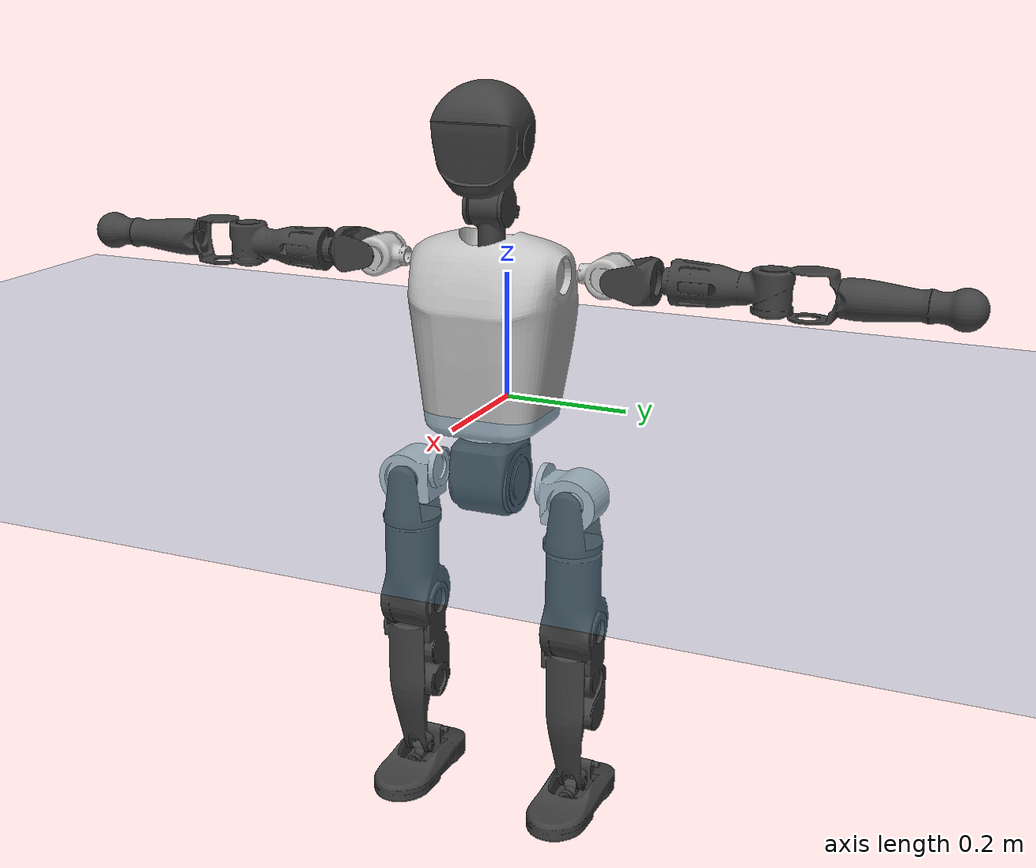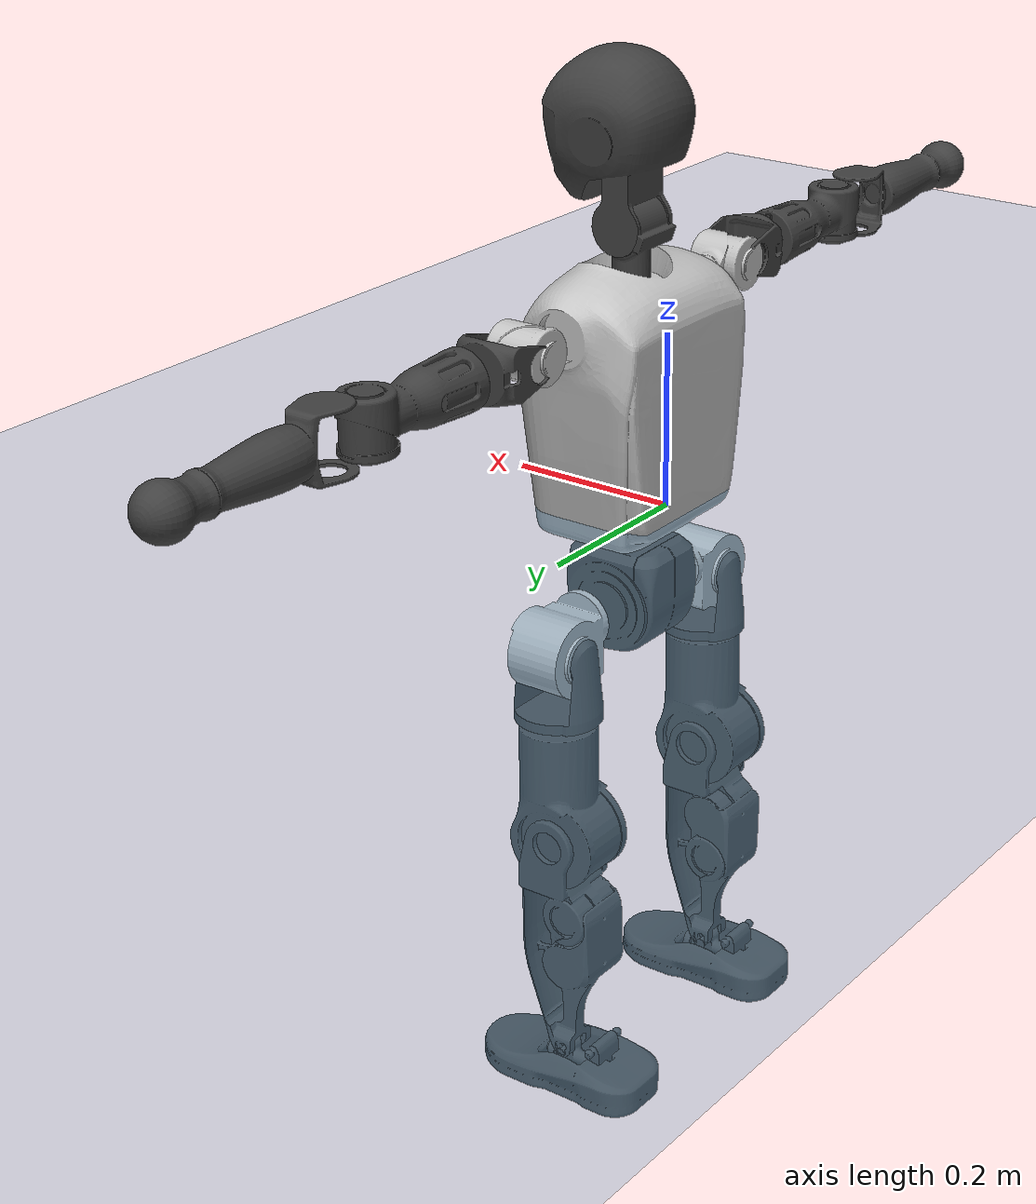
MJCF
<mujoco model="T1">
  <compiler angle="radian" assetdir="assets" balanceinertia="true" inertiafromgeom="false"/>

  <option timestep="0.005" density="1.2" viscosity="2e-05"/>

  <size nkey="1"/>

  <visual>
    <quality shadowsize="8192"/>
    <map shadowclip="0.5"/>
  </visual>

  <default>
    <default class="/">
      <joint armature="0.01" damping="0.01" frictionloss="0.1"/>
      <geom contype="0" conaffinity="0" group="1" solref="-1000 -80"/>
      <site size="0.01 0.005 0.005" group="5"/>
      <general forcelimited="true" biastype="affine" gainprm="25" biasprm="0 -25 -0.6"/>
      <default class="t1">
        <geom rgba="0.25 0.25 0.25 1"/>
        <default class="visual">
          <geom type="mesh" group="2"/>
        </default>
        <default class="collision">
          <geom group="3"/>
        </default>
        <default class="foot">
          <geom size="0.1115 0.05 0.015" type="box" condim="6" group="4" priority="1" solimp="0.015 1 0.015"/>
        </default>
        <default class="reward_collision_sphere">
          <geom group="5" rgba="1 0 0 1"/>
        </default>
      </default>
    </default>
  </default>

  <asset>
    <texture type="skybox" colorspace="auto" name="//unnamed_texture_0" builtin="gradient" rgb1="0.95 0.95 0.95" rgb2="0.95 0.95 0.95" width="100" height="600"/>
    <texture type="2d" colorspace="auto" name="texplane" builtin="checker" rgb1="0.345 0.575 0.748" rgb2="0.345 0.575 0.748" markrgb="1 1 1" width="512" height="512"/>
    <material name="MatPlane" class="/" texture="texplane" texuniform="true" texrepeat="2 2" specular="0.9"/>
    <mesh name="Trunk" class="/" file="Trunk.stl"/>
    <mesh name="H1" class="/" file="H1.stl"/>
    <mesh name="H2" class="/" file="H2.stl"/>
    <mesh name="AL1" class="/" file="AL1.stl"/>
    <mesh name="AL2" class="/" file="AL2.stl"/>
    <mesh name="AL3" class="/" file="AL3.stl"/>
    <mesh name="left_hand_link" class="/" file="left_hand_link.stl"/>
    <mesh name="AR1" class="/" file="AR1.stl"/>
    <mesh name="AR2" class="/" file="AR2.stl"/>
    <mesh name="AR3" class="/" file="AR3.stl"/>
    <mesh name="right_hand_link" class="/" file="right_hand_link.stl"/>
    <mesh name="Waist" class="/" file="Waist.stl"/>
    <mesh name="Hip_Pitch_Left" class="/" file="Hip_Pitch_Left.stl"/>
    <mesh name="Hip_Roll_Left" class="/" file="Hip_Roll_Left.stl"/>
    <mesh name="Hip_Yaw_Left" class="/" file="Hip_Yaw_Left.stl"/>
    <mesh name="Shank_Left" class="/" file="Shank_Left.stl"/>
    <mesh name="Ankle_Cross_Left" class="/" file="Ankle_Cross_Left.stl"/>
    <mesh name="left_foot_link" class="/" file="left_foot_link.stl"/>
    <mesh name="Hip_Pitch_Right" class="/" file="Hip_Pitch_Right.stl"/>
    <mesh name="Hip_Roll_Right" class="/" file="Hip_Roll_Right.stl"/>
    <mesh name="Hip_Yaw_Right" class="/" file="Hip_Yaw_Right.stl"/>
    <mesh name="Shank_Right" class="/" file="Shank_Right.stl"/>
    <mesh name="Ankle_Cross_Right" class="/" file="Ankle_Cross_Right.stl"/>
    <mesh name="right_foot_link" class="/" file="right_foot_link.stl"/>
  </asset>

  <worldbody>
    <geom name="floor" class="/" size="100 100 0.125" type="plane" group="0" material="MatPlane"/>
    <light name="toplight_shadow" class="/" pos="0 0 5" dir="0.0990148 0.0990148 -0.990148" type="directional" ambient="0.04 0.04 0.04" diffuse="0.55 0.55 0.55" specular="0.12 0.12 0.12"/>
    <light name="toplight_fill" class="/" pos="0 0 5" dir="0.0990148 0.0990148 -0.990148" type="directional" castshadow="false" ambient="0.04 0.04 0.04" diffuse="0.3 0.3 0.3" specular="0.08 0.08 0.08"/>
    <body name="trunk" childclass="t1" pos="-0.000200182 -0.00260261 -0.00243999" quat="1 3.54435e-05 0.000134859 0.000432427">
      <inertial pos="0.0500306 -0.000878753 0.109027" quat="0.999798 0.00608857 -0.0190333 0.00216268" mass="14.325" diaginertia="0.0446811 0.338913 0.0613493"/>
      <joint name="//unnamed_joint_0" type="free" armature="0" damping="0" frictionloss="0"/>
      <geom name="//unnamed_geom_1" class="visual" rgba="0.76 0.76 0.76 1" mesh="Trunk"/>
      <geom name="//unnamed_geom_2" class="collision" size="0.0815379 0.108717 0.163076" pos="0.0523566 0 0.12385" type="box"/>
      <geom name="//unnamed_geom_3" class="reward_collision_sphere" size="0.125025" pos="0.0523566 0 0.103208"/>
      <geom name="//unnamed_geom_4" class="reward_collision_sphere" size="0.0163076" pos="0.0523566 0.11533 0"/>
      <geom name="//unnamed_geom_5" class="reward_collision_sphere" size="0.0163076" pos="0.0523566 -0.11533 0"/>
      <geom name="//unnamed_geom_6" class="reward_collision_sphere" size="0.0163076" pos="0.0523566 0.14518 0.185775"/>
      <geom name="//unnamed_geom_7" class="reward_collision_sphere" size="0.0163076" pos="0.0523566 -0.14518 0.185775"/>
      <site name="imu" pos="-0.0134275 -0.0139785 0.00950066" size="0.0108717"/>
      <camera name="track" pos="0 -2.71365 0" quat="0.707107 0.707107 0 0" mode="trackcom"/>
      <camera name="ego_camera" pos="0.106458 0 0.433474" quat="-0.5 -0.5 0.5 0.5"/>
      <body name="H1" pos="0.051117 -0.001143 0.251387" quat="1 1.58098e-06 -6.21554e-05 -8.68891e-05">
        <inertial pos="-0.00055196 -0.00290481 0.0583112" quat="0.761635 -0.0132398 0.00420931 0.647858" mass="0.563578" diaginertia="0.000123417 0.00101185 0.000173591"/>
        <joint name="AAHead_yaw" pos="0 0 0" axis="-0.0100876 0.00802229 0.999917" range="-1.56802 1.5622" armature="0.0114007" damping="0.02147" frictionloss="0.116019"/>
        <geom name="//unnamed_geom_8" class="visual" mesh="H1"/>
        <body name="H2" pos="0.000750716 -0.00272596 0.0622899" quat="1 0.000362696 -0.000186732 -7.95803e-05">
          <inertial pos="0.00349473 0.00136909 0.0993674" quat="0.988379 0.106366 -0.0753495 -0.0781999" mass="0.805515" diaginertia="0.0010296 0.00876342 0.00204223"/>
          <joint name="Head_pitch" pos="0 0 0" axis="-0.000829722 -0.999976 0.00681371" range="-1.20219 0.341101" armature="0.0108333" damping="0.00948892" frictionloss="0.0954945"/>
          <geom name="//unnamed_geom_9" class="visual" mesh="H2"/>
          <geom name="//unnamed_geom_10" class="collision" size="0.0869737" pos="0.0087261 0 0.113529"/>
          <geom name="//unnamed_geom_11" class="reward_collision_sphere" size="0.0978455" pos="0.0174522 0 0.103208"/>
        </body>
      </body>
      <body name="AL1" pos="0.0485303 0.143862 0.223526" quat="1 -9.4617e-05 0.000707294 -1.71847e-05">
        <inertial pos="-0.000606581 0.0580728 -0.00294725" quat="0.504188 0.496019 -0.504372 0.495346" mass="0.692162" diaginertia="0.000716373 0.00599279 0.000341097"/>
        <joint name="Left_Shoulder_Pitch" pos="0 0 0" axis="-0.00030152 0.999997 -0.00226418" range="-3.27401 1.24424" armature="0.0108536" damping="0" frictionloss="0.109105"/>
        <geom name="//unnamed_geom_12" class="visual" rgba="0.76 0.76 0.76 1" mesh="AL1"/>
        <body name="AL2" pos="0.00120091 0.0651824 -0.002407" quat="0.999999 -0.000673589 0.000779577 0.000412849">
          <inertial pos="0.00370133 0.0508015 0.00260663" quat="0.485314 0.509453 -0.488898 0.515662" mass="0.210918" diaginertia="0.000198796 0.0015729 0.000206153"/>
          <joint name="Left_Shoulder_Roll" pos="0 0 0" axis="-0.999994 0.00332215 0.000247003" range="-1.57782 1.73383" armature="0.011983" damping="0.00765266" frictionloss="0.101483"/>
          <geom name="//unnamed_geom_13" class="visual" mesh="AL2"/>
          <body name="AL3" pos="0.000157405 0.0810487 0.00312595" quat="1 -1.54295e-05 -0.000344674 0.00040764">
            <inertial pos="-5.20289e-05 0.114939 -0.00276566" quat="0.710529 0.703592 0.00303626 0.00987429" mass="1.36512" diaginertia="0.00645168 0.0606501 0.000759077"/>
            <joint name="Left_Elbow_Pitch" pos="0 0 0" axis="-0.00390697 -0.99991 -0.0128157" stiffness="0.00874523" range="-2.25995 2.27293" armature="0.010435" damping="0.0218414" frictionloss="0.113401"/>
            <geom name="//unnamed_geom_14" class="visual" mesh="AL3"/>
            <geom name="//unnamed_geom_15" class="collision" size="0.0326152 0.0815379" pos="0 0.0678412 0" quat="0.707105 0.707108 0 0" type="cylinder"/>
            <geom name="//unnamed_geom_16" class="reward_collision_sphere" size="0.0391382"/>
            <body name="left_hand_link" pos="0.00294975 0.200009 0.000487111" quat="1 0.000314439 0.000118351 5.66284e-05">
              <inertial pos="-0.000735142 0.148635 -0.000142191" quat="0.707771 0.706364 -0.00244533 0.010268" mass="0.424782" diaginertia="0.00406021 0.0378853 0.000251051"/>
              <joint name="Left_Elbow_Yaw" pos="0 0 0" axis="0.000359659 0.00855504 0.999963" range="-2.44759 0.0176342" armature="0.0106468" damping="0.0152219" frictionloss="0.11752"/>
              <geom name="//unnamed_geom_17" class="visual" mesh="left_hand_link"/>
              <geom name="//unnamed_geom_18" class="collision" size="0.0326152 0.0951275" pos="0 0.176387 0" quat="0.707105 0.707108 0 0" type="cylinder"/>
              <geom name="//unnamed_geom_19" class="reward_collision_sphere" size="0.0543586"/>
              <geom name="//unnamed_geom_20" class="reward_collision_sphere" size="0.038051" pos="0 0.149251 0"/>
              <geom name="//unnamed_geom_21" class="reward_collision_sphere" size="0.038051" pos="0 0.291717 0"/>
            </body>
          </body>
        </body>
      </body>
      <body name="AR1" pos="0.0530869 -0.14383 0.225959" quat="0.999999 0.000518422 0.000479797 -0.000990414">
        <inertial pos="-0.00337525 -0.060976 -0.000185527" quat="0.50369 0.496247 -0.504188 0.495812" mass="0.713776" diaginertia="0.000717408 0.00636316 0.000364188"/>
        <joint name="Right_Shoulder_Pitch" pos="0 0 0" axis="0.00741723 -0.99996 -0.0049963" stiffness="0.00110826" range="-1.23165 3.32439" armature="0.0109026" damping="0.00520467" frictionloss="0.11038"/>
        <geom name="//unnamed_geom_22" class="visual" rgba="0.76 0.76 0.76 1" mesh="AR1"/>
        <body name="AR2" pos="0.000719442 -0.0625369 0.00273969" quat="1 -0.000116701 -0.000306399 4.73234e-05">
          <inertial pos="0.000552098 -0.0504775 0.00140742" quat="0.511765 0.487554 -0.511679 0.488439" mass="0.210772" diaginertia="0.000216245 0.00164541 0.000220051"/>
          <joint name="Right_Shoulder_Roll" pos="0 0 0" axis="-1 8.26509e-05 -0.000343488" range="-1.7326 1.58457" armature="0.0110202" damping="0.0121319" frictionloss="0.119154"/>
          <geom name="//unnamed_geom_23" class="visual" mesh="AR2"/>
          <body name="AR3" pos="0.00296942 -0.0795825 -0.0029042" quat="0.999999 0.00115482 -0.000596064 0.000495299">
            <inertial pos="0.00204831 -0.115504 -0.00155301" quat="0.715841 0.69825 0.00327674 -0.00283516" mass="1.35641" diaginertia="0.00672501 0.0612619 0.000727786"/>
            <joint name="Right_Elbow_Pitch" pos="0 0 0" axis="0.0098123 0.99992 -0.00795748" range="-2.27695 2.31329" armature="0.0105722" damping="0.0127223" frictionloss="0.114948"/>
            <geom name="//unnamed_geom_24" class="visual" mesh="AR3"/>
            <geom name="//unnamed_geom_25" class="collision" size="0.0326152 0.0815379" pos="0 -0.0678412 0" quat="0.707105 0.707108 0 0" type="cylinder"/>
            <geom name="//unnamed_geom_26" class="reward_collision_sphere" size="0.0391382"/>
            <body name="right_hand_link" pos="-0.000896101 -0.198226 -0.000854152" quat="0.999999 0.000907868 0.000804825 0.000205481">
              <inertial pos="-0.00061385 -0.14644 0.00324407" quat="0.707283 0.706893 0.00703889 0.0018222" mass="0.423229" diaginertia="0.0043397 0.0393699 0.000251193"/>
              <joint name="Right_Elbow_Yaw" pos="0 0 0" axis="0.000192056 -0.00310574 0.999995" range="0.0449683 2.4554" armature="0.0111945" damping="0.00611784" frictionloss="0.108691"/>
              <geom name="//unnamed_geom_27" class="visual" mesh="right_hand_link"/>
              <geom name="//unnamed_geom_28" class="collision" size="0.0326152 0.0951275" pos="0 -0.176387 0" quat="0.707105 0.707108 0 0" type="cylinder"/>
              <geom name="//unnamed_geom_29" class="reward_collision_sphere" size="0.0543586"/>
              <geom name="//unnamed_geom_30" class="reward_collision_sphere" size="0.038051" pos="0 -0.149251 0"/>
              <geom name="//unnamed_geom_31" class="reward_collision_sphere" size="0.038051" pos="0 -0.291717 0"/>
            </body>
          </body>
        </body>
      </body>
      <body name="Waist" pos="0.0514235 -0.002635 -0.117781" quat="0.999999 0.00120065 0.000400278 -0.000173657">
        <inertial pos="0.00347019 0.00113273 0.0087063" quat="0.983688 0.00076933 -0.179858 0.0029797" mass="3.13099" diaginertia="0.0026528 0.0238406 0.00554151"/>
        <joint name="Waist" pos="0 0 0" axis="0.0132161 -0.00113807 0.999912" range="-1.62412 1.56615" armature="0.0119649" damping="0.0234598" frictionloss="0.109555"/>
        <geom name="//unnamed_geom_32" class="visual" mesh="Waist"/>
        <body name="Hip_Pitch_Left" pos="0.00100749 0.145887 0.000424058" quat="1 -0.000736736 -0.00010388 -0.000192818">
          <inertial pos="0.0011431 -0.00844781 -0.0165623" quat="0.97743 0.210144 0.0209303 0.00557229" mass="1.30551" diaginertia="0.000915136 0.00687585 0.00146412"/>
          <joint name="Left_Hip_Pitch" pos="0 0 0" axis="0.00105062 0.999982 0.00595312" stiffness="0.00992243" range="-1.80423 1.57396" armature="0.0107682" damping="0.0242271" frictionloss="0.122645"/>
          <geom name="//unnamed_geom_33" class="visual" rgba="0.76 0.76 0.76 1" mesh="Hip_Pitch_Left"/>
          <body name="Hip_Roll_Left" pos="-0.00022282 -0.0031388 -0.0222342" quat="1 -0.000338088 0.000376561 -0.000208398">
            <inertial pos="-0.00187517 -0.000632731 -0.0525443" quat="0.706712 -0.00729982 -0.00755709 0.707424" mass="0.512299" diaginertia="0.000893887 0.00744891 0.000625227"/>
            <joint name="Left_Hip_Roll" pos="0 0 0" axis="-0.99999 -0.0014353 -0.00420428" stiffness="0.00210352" range="-1.56671 0.228312" armature="0.0110134" damping="0" frictionloss="0.0940601"/>
            <geom name="//unnamed_geom_34" class="visual" mesh="Hip_Roll_Left"/>
            <geom name="//unnamed_geom_35" class="reward_collision_sphere" size="0.0597944"/>
            <body name="Hip_Yaw_Left" pos="-0.00252407 0.00094621 -0.0863171" quat="1 -0.00027214 0.000195621 7.28267e-05">
              <inertial pos="-0.00722318 0.00220684 -0.0933493" quat="0.696762 -0.0338295 -0.0312778 0.715821" mass="2.74121" diaginertia="0.0132699 0.117838 0.00309676"/>
              <joint name="Left_Hip_Yaw" pos="0 0 0" axis="0.000540438 -0.000627195 -1" range="-1.06109 1.01715" armature="0.0105522" damping="0" frictionloss="0.107986"/>
              <geom name="//unnamed_geom_36" class="visual" mesh="Hip_Yaw_Left"/>
              <geom name="//unnamed_geom_37" class="collision" size="0.0543586 0.0869737" type="cylinder"/>
              <body name="Shank_Left" pos="-0.0130598 -0.000195812 -0.135062" quat="1 -4.24913e-06 -5.27789e-05 -3.78098e-05">
                <inertial pos="-0.00656821 0.00147667 -0.12767" quat="0.997603 0.0025496 -0.023283 0.065107" mass="2.28642" diaginertia="0.017875 0.160522 0.00225358"/>
                <joint name="Left_Knee_Pitch" pos="0 0 0" axis="-0.00266063 0.999956 -0.009014" stiffness="0.00848436" range="0.0540513 2.28296" armature="0.0106446" damping="0.0149088" frictionloss="0.100142"/>
                <geom name="//unnamed_geom_38" class="visual" mesh="Shank_Left"/>
                <geom name="//unnamed_geom_39" class="collision" size="0.0543586 0.0815379" pos="0 0 -0.12385" type="cylinder"/>
                <geom name="//unnamed_geom_40" class="reward_collision_sphere" size="0.0706662"/>
                <body name="Ankle_Cross_Left" pos="0.00187364 6.22418e-05 -0.288533" quat="1 1.60522e-05 -4.40526e-05 -7.63285e-05">
                  <inertial pos="-0.0058457 0.00205397 -0.00553768" quat="0.444193 0.553582 0.543721 0.447892" mass="0.0958376" diaginertia="1.49093e-05 0.000114527 1.32653e-05"/>
                  <joint name="Left_Ankle_Pitch" pos="0 0 0" axis="-0.000564797 1 2.07753e-05" range="-0.865621 0.369287" armature="0.00951086" damping="0" frictionloss="0.120904"/>
                  <geom name="//unnamed_geom_41" class="visual" mesh="Ankle_Cross_Left"/>
                  <body name="left_foot_link" pos="-0.00396159 -0.00209473 -0.013061" quat="0.999999 -0.00100307 -0.000442549 -0.000766034">
                    <inertial pos="-0.00206776 -0.000276544 -0.0107358" quat="-0.0063597 0.625772 0.00695105 0.779949" mass="0.861862" diaginertia="0.00134025 0.0112029 0.00249377"/>
                    <joint name="Left_Ankle_Roll" pos="0 0 0" axis="-0.999997 -0.00223411 -0.000453795" range="-0.449178 0.441597" armature="0.0110191" damping="0" frictionloss="0.107501"/>
                    <geom name="//unnamed_geom_42" class="visual" mesh="left_foot_link"/>
                    <geom name="left_foot" class="foot" size="0.118316 0.0471404 0.0155527" pos="0.0087261 0 -0.0154812"/>
                    <geom name="//unnamed_geom_44" class="reward_collision_sphere" size="0.0565329" pos="0.0087261 0 -0.0154812"/>
                    <geom name="//unnamed_geom_45" class="reward_collision_sphere" size="0.0326152" pos="0.0828979 -0.031207 -0.0154812"/>
                    <geom name="//unnamed_geom_46" class="reward_collision_sphere" size="0.0326152" pos="-0.0610827 -0.031207 -0.0154812"/>
                    <site name="left_foot" class="foot" pos="0.0087261 0 -0.0154812" size="0.0108717"/>
                  </body>
                </body>
              </body>
            </body>
          </body>
        </body>
        <body name="Hip_Pitch_Right" pos="0.000105081 -0.141681 0.00256674" quat="1 9.6234e-05 5.1945e-06 -0.000101364">
          <inertial pos="-0.00115626 0.0078603 -0.0176539" quat="0.975015 -0.22096 0.0215905 -0.00750742" mass="1.34394" diaginertia="0.000937451 0.00674115 0.00152736"/>
          <joint name="Right_Hip_Pitch" pos="0 0 0" axis="0.002197 -0.99999 -0.00388541" stiffness="0.00578025" range="-1.56909 1.81435" armature="0.00959741" damping="0.0125077" frictionloss="0.111123"/>
          <geom name="//unnamed_geom_47" class="visual" rgba="0.76 0.76 0.76 1" mesh="Hip_Pitch_Right"/>
          <body name="Hip_Roll_Right" pos="-0.000548977 -0.00130719 -0.0216949" quat="0.999999 -0.000856236 0.00126938 -5.4679e-05">
            <inertial pos="0.00129398 0.00251556 -0.052929" quat="0.706261 -0.00645254 -0.0077743 0.707879" mass="0.474634" diaginertia="0.000878904 0.00700596 0.000594645"/>
            <joint name="Right_Hip_Roll" pos="0 0 0" axis="-0.999998 -0.000815315 0.00157178" range="-0.224206 1.53139" armature="0.0110568" damping="0.0131009" frictionloss="0.123663"/>
            <geom name="//unnamed_geom_48" class="visual" mesh="Hip_Roll_Right"/>
            <geom name="//unnamed_geom_49" class="reward_collision_sphere" size="0.0597944"/>
            <body name="Hip_Yaw_Right" pos="-0.0018955 -0.00209318 -0.0835477" quat="1 9.78363e-06 7.01727e-06 -2.37424e-05">
              <inertial pos="-0.00682913 -0.00286399 -0.0921431" quat="0.719222 -0.0389133 -0.0401934 0.692525" mass="2.90649" diaginertia="0.0132049 0.123365 0.00301269"/>
              <joint name="Right_Hip_Yaw" pos="0 0 0" axis="-0.00578983 -0.00305174 -0.999979" range="-0.994756 1.0378" armature="0.0114153" damping="0.0165023" frictionloss="0.109144"/>
              <geom name="//unnamed_geom_50" class="visual" mesh="Hip_Yaw_Right"/>
              <geom name="//unnamed_geom_51" class="collision" size="0.0543586 0.0869737" type="cylinder"/>
              <body name="Shank_Right" pos="-0.013315 0.000181163 -0.137919" quat="0.999999 -6.29884e-05 0.000901728 0.000927287">
                <inertial pos="-0.00621526 -0.000431339 -0.12826" quat="0.999255 -0.00142414 -0.0228882 -0.0310494" mass="2.28192" diaginertia="0.0171091 0.153207 0.0022987"/>
                <joint name="Right_Knee_Pitch" pos="0 0 0" axis="-0.00288769 -0.999977 0.00606345" stiffness="0.00809973" range="-2.33485 0.0436326" armature="0.0106692" damping="0.0186574" frictionloss="0.108017"/>
                <geom name="//unnamed_geom_52" class="visual" mesh="Shank_Right"/>
                <geom name="//unnamed_geom_53" class="collision" size="0.0543586 0.0815379" pos="0 0 -0.12385" type="cylinder"/>
                <geom name="//unnamed_geom_54" class="reward_collision_sphere" size="0.0706662"/>
                <body name="Ankle_Cross_Right" pos="-0.00184512 0.00160931 -0.286825" quat="1 -0.000332588 4.84896e-05 0.000105369">
                  <inertial pos="-0.00285072 -0.00225259 -0.00811652" quat="0.447856 0.550725 0.556207 0.432159" mass="0.0995697" diaginertia="1.48505e-05 0.000119932 1.4158e-05"/>
                  <joint name="Right_Ankle_Pitch" pos="0 0 0" axis="0.0101755 -0.999919 -0.00770368" range="-0.371195 0.85211" armature="0.0108445" damping="0.0109429" frictionloss="0.100622"/>
                  <geom name="//unnamed_geom_55" class="visual" mesh="Ankle_Cross_Right"/>
                  <body name="right_foot_link" pos="0.000292549 -0.000463909 -0.0140424" quat="1 -1.53698e-05 1.57038e-06 1.17134e-05">
                    <inertial pos="0.000483851 -0.00167521 -0.0089039" quat="2.18954e-05 0.62007 -0.00105568 0.784546" mass="0.87467" diaginertia="0.00134183 0.0105884 0.00250966"/>
                    <joint name="Right_Ankle_Roll" pos="0 0 0" axis="-0.999949 -0.00960428 -0.00326026" range="-0.435812 0.442868" armature="0.0107451" damping="0.00872024" frictionloss="0.111063"/>
                    <geom name="//unnamed_geom_56" class="visual" mesh="right_foot_link"/>
                    <geom name="right_foot" class="foot" size="0.105264 0.046275 0.0147212" pos="0.0087261 0 -0.0154812"/>
                    <geom name="//unnamed_geom_58" class="reward_collision_sphere" size="0.0434869"/>
                    <geom name="//unnamed_geom_59" class="reward_collision_sphere" size="0.0326152" pos="0.0087261 0 -0.0154812"/>
                    <geom name="//unnamed_geom_60" class="reward_collision_sphere" size="0.0326152" pos="0.0828979 0.031207 -0.0154812"/>
                    <geom name="//unnamed_geom_61" class="reward_collision_sphere" size="0.0326152" pos="-0.0610827 0.031207 -0.0154812"/>
                    <site name="right_foot" class="foot" pos="0.0087261 0 -0.0154812" size="0.0108717"/>
                  </body>
                </body>
              </body>
            </body>
          </body>
        </body>
      </body>
    </body>
  </worldbody>

  <contact>
    <pair class="/" geom1="floor" geom2="left_foot" name="//unnamed_contact_0"/>
    <pair class="/" geom1="floor" geom2="right_foot" name="//unnamed_contact_1"/>
  </contact>

  <actuator>
    <general name="AAHead_yaw" class="/" joint="AAHead_yaw" forcerange="-8.2289 8.2289" gainprm="25.7121" biasprm="0 -25.7121 -0.620208"/>
    <general name="Head_pitch" class="/" joint="Head_pitch" forcerange="-7.53036 7.53036" gainprm="25.7121" biasprm="0 -25.7121 -0.620208"/>
    <general name="Left_Shoulder_Pitch" class="/" joint="Left_Shoulder_Pitch" forcerange="-17.4561 17.4561" gainprm="25.7121" biasprm="0 -25.7121 -0.620208"/>
    <general name="Left_Shoulder_Roll" class="/" joint="Left_Shoulder_Roll" forcerange="-17.6816 17.6816" gainprm="25.7121" biasprm="0 -25.7121 -0.620208"/>
    <general name="Left_Elbow_Pitch" class="/" joint="Left_Elbow_Pitch" forcerange="-20.032 20.032" gainprm="25.7121" biasprm="0 -25.7121 -0.620208"/>
    <general name="Left_Elbow_Yaw" class="/" joint="Left_Elbow_Yaw" forcerange="-17.9811 17.9811" gainprm="25.7121" biasprm="0 -25.7121 -0.620208"/>
    <general name="Right_Shoulder_Pitch" class="/" joint="Right_Shoulder_Pitch" forcerange="-21.6585 21.6585" gainprm="25.7121" biasprm="0 -25.7121 -0.620208"/>
    <general name="Right_Shoulder_Roll" class="/" joint="Right_Shoulder_Roll" forcerange="-17.5683 17.5683" gainprm="25.7121" biasprm="0 -25.7121 -0.620208"/>
    <general name="Right_Elbow_Pitch" class="/" joint="Right_Elbow_Pitch" forcerange="-19.6737 19.6737" gainprm="25.7121" biasprm="0 -25.7121 -0.620208"/>
    <general name="Right_Elbow_Yaw" class="/" joint="Right_Elbow_Yaw" forcerange="-21.2989 21.2989" gainprm="25.7121" biasprm="0 -25.7121 -0.620208"/>
    <general name="Waist" class="/" joint="Waist" forcerange="-36.2358 36.2358" gainprm="25.7121" biasprm="0 -25.7121 -0.620208"/>
    <general name="Left_Hip_Pitch" class="/" joint="Left_Hip_Pitch" forcerange="-47.0796 47.0796" gainprm="25.7121" biasprm="0 -25.7121 -0.620208"/>
    <general name="Left_Hip_Roll" class="/" joint="Left_Hip_Roll" forcerange="-34.7993 34.7993" gainprm="25.7121" biasprm="0 -25.7121 -0.620208"/>
    <general name="Left_Hip_Yaw" class="/" joint="Left_Hip_Yaw" forcerange="-30.929 30.929" gainprm="25.7121" biasprm="0 -25.7121 -0.620208"/>
    <general name="Left_Knee_Pitch" class="/" joint="Left_Knee_Pitch" forcerange="-65.5406 65.5406" gainprm="25.7121" biasprm="0 -25.7121 -0.620208"/>
    <general name="Left_Ankle_Pitch" class="/" joint="Left_Ankle_Pitch" forcerange="-22.0614 22.0614" gainprm="25.7121" biasprm="0 -25.7121 -0.620208"/>
    <general name="Left_Ankle_Roll" class="/" joint="Left_Ankle_Roll" forcerange="-16.8432 16.8432" gainprm="25.7121" biasprm="0 -25.7121 -0.620208"/>
    <general name="Right_Hip_Pitch" class="/" joint="Right_Hip_Pitch" forcerange="-48.7042 48.7042" gainprm="25.7121" biasprm="0 -25.7121 -0.620208"/>
    <general name="Right_Hip_Roll" class="/" joint="Right_Hip_Roll" forcerange="-31.8251 31.8251" gainprm="25.7121" biasprm="0 -25.7121 -0.620208"/>
    <general name="Right_Hip_Yaw" class="/" joint="Right_Hip_Yaw" forcerange="-32.3675 32.3675" gainprm="25.7121" biasprm="0 -25.7121 -0.620208"/>
    <general name="Right_Knee_Pitch" class="/" joint="Right_Knee_Pitch" forcerange="-65.1052 65.1052" gainprm="25.7121" biasprm="0 -25.7121 -0.620208"/>
    <general name="Right_Ankle_Pitch" class="/" joint="Right_Ankle_Pitch" forcerange="-20.8108 20.8108" gainprm="25.7121" biasprm="0 -25.7121 -0.620208"/>
    <general name="Right_Ankle_Roll" class="/" joint="Right_Ankle_Roll" forcerange="-14.7157 14.7157" gainprm="25.7121" biasprm="0 -25.7121 -0.620208"/>
  </actuator>

  <sensor>
    <gyro site="imu" name="imu_angular_velocity"/>
    <velocimeter site="imu" name="imu_linear_velocity"/>
    <framelinvel objtype="site" objname="left_foot" name="left_foot_global_linear_velocity"/>
    <framelinvel objtype="site" objname="right_foot" name="right_foot_global_linear_velocity"/>
  </sensor>

  <keyframe>
    <key name="home" qpos="0 0 0.6385 1 0 0 0 0 0 0 1.4 0 -0.4 0 -1.4 0 0.4 0 -0.4 0 0 0.8 -0.4 0 0.4 0 0 -0.8 0.4 0"/>
  </keyframe>
</mujoco>
